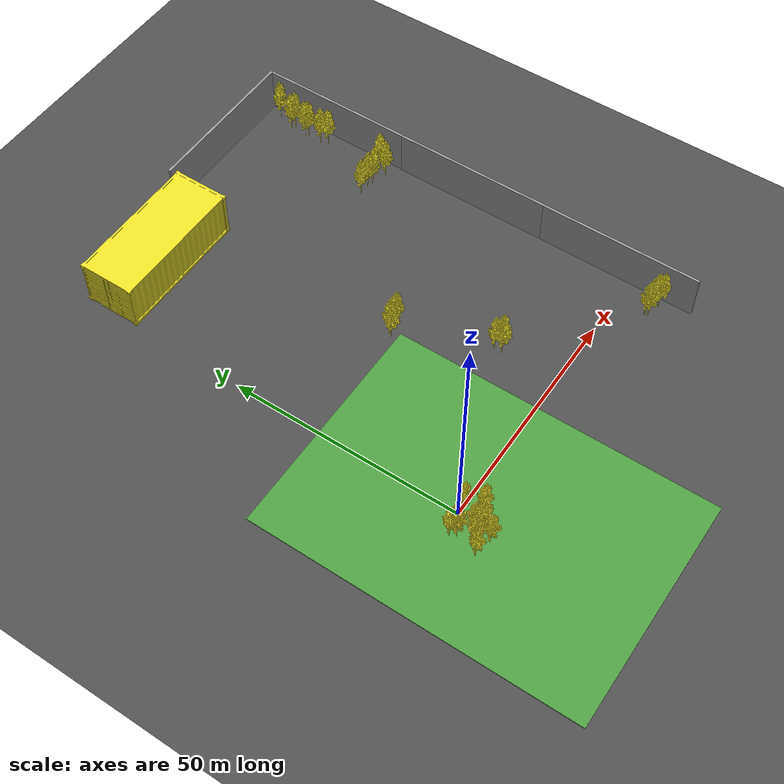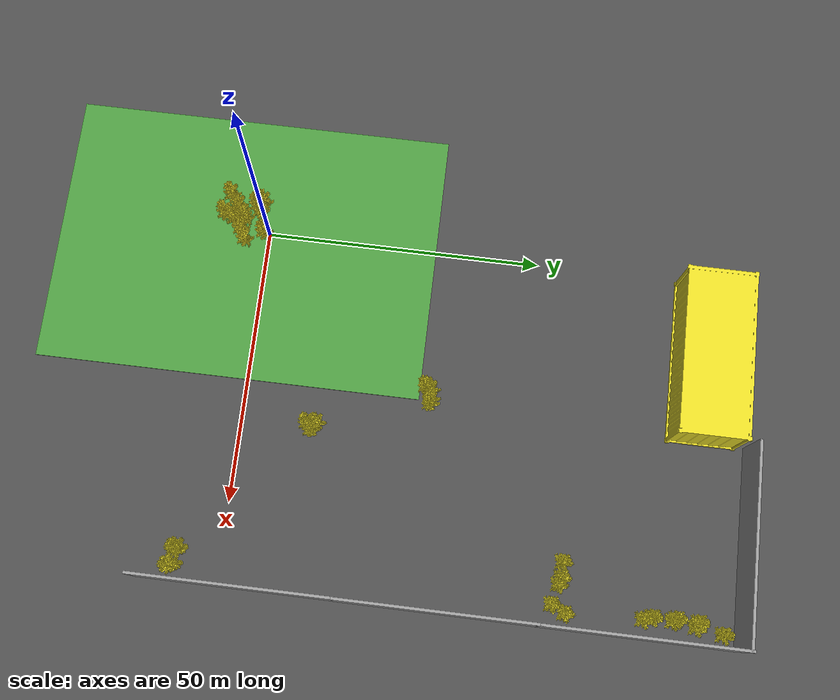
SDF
<sdf version="1.6">
 <world name="default">
  <model name="ground_plane">
   <static>1</static>
   <link name="link">
    <collision name="collision">
     <geometry><plane><normal>0 0 1</normal><size>40000 40000</size></plane></geometry>
     <surface>
      <contact><collide_bitmask>65535</collide_bitmask></contact>
      <friction><ode><mu>100</mu><mu2>50</mu2></ode></friction>
     </surface>
    </collision>
    <visual name="visual">
     <cast_shadows>0</cast_shadows>
     <geometry><plane><normal>0 0 1</normal><size>130 180</size></plane></geometry>
     <material>
      <script><uri>file://media/materials/scripts/gazebo.material</uri><name>Gazebo/Road</name></script>
     </material>
    </visual>
   </link>
  </model>
  <model name="grass_plane">
   <link name="link">
    <inertial>
     <mass>1</mass>
     <inertia><ixx>1</ixx><ixy>0</ixy><ixz>0</ixz><iyy>1</iyy><iyz>0</iyz><izz>1</izz></inertia>
    </inertial>
    <visual name="visual">
     <cast_shadows>0</cast_shadows>
     <geometry><box><size>50 70 0.2</size></box></geometry>
     <material>
      <script><uri>file://media/materials/scripts/gazebo.material</uri><name>Gazebo/Grass</name></script>
     </material>
    </visual>
    <collision name="collision">
     <geometry><box><size>10 30 0.2</size></box></geometry>
     <surface>
      <friction>
       <ode><mu>1</mu><mu2>1</mu2><fdir1>0 0 0</fdir1><slip1>0</slip1><slip2>0</slip2></ode>
       <torsional>
        <coefficient>1</coefficient>
        <patch_radius>0</patch_radius>
        <surface_radius>0</surface_radius>
        <use_patch_radius>1</use_patch_radius>
        <ode><slip>0</slip></ode>
       </torsional>
      </friction>
      <bounce><restitution_coefficient>0</restitution_coefficient><threshold>1e+06</threshold></bounce>
      <contact>
       <collide_without_contact>0</collide_without_contact>
       <collide_without_contact_bitmask>1</collide_without_contact_bitmask>
       <collide_bitmask>1</collide_bitmask>
       <ode>
        <soft_cfm>0</soft_cfm>
        <soft_erp>0.2</soft_erp>
        <kp>1e+13</kp>
        <kd>1</kd>
        <max_vel>0.01</max_vel>
        <min_depth>0</min_depth>
       </ode>
       <bullet>
        <split_impulse>1</split_impulse>
        <split_impulse_penetration_threshold>-0.01</split_impulse_penetration_threshold>
        <soft_cfm>0</soft_cfm>
        <soft_erp>0.2</soft_erp>
        <kp>1e+13</kp>
        <kd>1</kd>
       </bullet>
      </contact>
     </surface>
    </collision>
   </link>
   <static>1</static>
   <pose>2.79773 -3.97523 0 0 -0 0</pose>
  </model>
  <model name="wall1_clone_clone_clone_4">
   <link name="link">
    <enable_wind>1</enable_wind>
    <inertial>
     <mass>1</mass>
     <inertia><ixx>1</ixx><ixy>0</ixy><ixz>0</ixz><iyy>1</iyy><iyz>0</iyz><izz>1</izz></inertia>
    </inertial>
    <visual name="visual">
     <cast_shadows>0</cast_shadows>
     <geometry><box><size>35 0.5 10</size></box></geometry>
     <material>
      <script>
       <uri>model://grey_wall/materials/scripts</uri>
       <uri>model://grey_wall/materials/textures</uri>
       <name>vrc/grey_wall</name>
      </script>
      <shader type="pixel"><normal_map>__default__</normal_map></shader>
      <ambient>1 1 1 1</ambient>
      <diffuse>1 1 1 1</diffuse>
      <specular>0 0 0 1</specular>
      <emissive>0 0 0 1</emissive>
     </material>
    </visual>
    <collision name="collision">
     <geometry><box><size>35 0.5 10</size></box></geometry>
     <surface>
      <friction>
       <ode><mu>1</mu><mu2>1</mu2><fdir1>0 0 0</fdir1><slip1>0</slip1><slip2>0</slip2></ode>
       <torsional>
        <coefficient>1</coefficient>
        <patch_radius>0</patch_radius>
        <surface_radius>0</surface_radius>
        <use_patch_radius>1</use_patch_radius>
        <ode><slip>0</slip></ode>
       </torsional>
      </friction>
      <bounce><restitution_coefficient>0</restitution_coefficient><threshold>1e+06</threshold></bounce>
      <contact>
       <collide_without_contact>0</collide_without_contact>
       <collide_without_contact_bitmask>1</collide_without_contact_bitmask>
       <collide_bitmask>1</collide_bitmask>
       <ode>
        <soft_cfm>0</soft_cfm>
        <soft_erp>0.2</soft_erp>
        <kp>1e+13</kp>
        <kd>1</kd>
        <max_vel>0.01</max_vel>
        <min_depth>0</min_depth>
       </ode>
       <bullet>
        <split_impulse>1</split_impulse>
        <split_impulse_penetration_threshold>-0.01</split_impulse_penetration_threshold>
        <soft_cfm>0</soft_cfm>
        <soft_erp>0.2</soft_erp>
        <kp>1e+13</kp>
        <kd>1</kd>
       </bullet>
      </contact>
     </surface>
    </collision>
   </link>
   <static>1</static>
   <pose>47.1545 89.4112 5 0 -0 0</pose>
  </model>
  <model name="wall1_clone_clone_0_clone_5">
   <link name="link">
    <enable_wind>1</enable_wind>
    <inertial>
     <mass>1</mass>
     <inertia><ixx>1</ixx><ixy>0</ixy><ixz>0</ixz><iyy>1</iyy><iyz>0</iyz><izz>1</izz></inertia>
    </inertial>
    <visual name="visual">
     <cast_shadows>0</cast_shadows>
     <geometry><box><size>35 0.5 10</size></box></geometry>
     <material>
      <script>
       <uri>model://grey_wall/materials/scripts</uri>
       <uri>model://grey_wall/materials/textures</uri>
       <name>vrc/grey_wall</name>
      </script>
      <shader type="pixel"><normal_map>__default__</normal_map></shader>
      <ambient>1 1 1 1</ambient>
      <diffuse>1 1 1 1</diffuse>
      <specular>0 0 0 1</specular>
      <emissive>0 0 0 1</emissive>
     </material>
    </visual>
    <collision name="collision">
     <geometry><box><size>35 0.5 10</size></box></geometry>
     <surface>
      <friction>
       <ode><mu>1</mu><mu2>1</mu2><fdir1>0 0 0</fdir1><slip1>0</slip1><slip2>0</slip2></ode>
       <torsional>
        <coefficient>1</coefficient>
        <patch_radius>0</patch_radius>
        <surface_radius>0</surface_radius>
        <use_patch_radius>1</use_patch_radius>
        <ode><slip>0</slip></ode>
       </torsional>
      </friction>
      <bounce><restitution_coefficient>0</restitution_coefficient><threshold>1e+06</threshold></bounce>
      <contact>
       <collide_without_contact>0</collide_without_contact>
       <collide_without_contact_bitmask>1</collide_without_contact_bitmask>
       <collide_bitmask>1</collide_bitmask>
       <ode>
        <soft_cfm>0</soft_cfm>
        <soft_erp>0.2</soft_erp>
        <kp>1e+13</kp>
        <kd>1</kd>
        <max_vel>0.01</max_vel>
        <min_depth>0</min_depth>
       </ode>
       <bullet>
        <split_impulse>1</split_impulse>
        <split_impulse_penetration_threshold>-0.01</split_impulse_penetration_threshold>
        <soft_cfm>0</soft_cfm>
        <soft_erp>0.2</soft_erp>
        <kp>1e+13</kp>
        <kd>1</kd>
       </bullet>
      </contact>
     </surface>
    </collision>
   </link>
   <static>1</static>
   <pose>64.6101 72.3736 5 0 0 -1.57191</pose>
  </model>
  <model name="tree0_clone_0">
   <link name="tree_base">
    <inertial>
     <mass>50</mass>
     <inertia>
      <ixx>6.71748</ixx>
      <ixy>2.148e-05</ixy>
      <ixz>-2.4e-07</ixz>
      <iyy>6.71748</iyy>
      <iyz>-0.171807</iyz>
      <izz>6.71748</izz>
     </inertia>
    </inertial>
    <collision name="tree_base_fixed_joint_lump__collision_collision">
     <geometry><mesh><scale>0.4 0.4 0.6</scale><uri>model://tree/meshes/tree_25k_mesh.dae</uri></mesh></geometry>
    </collision>
    <visual name="tree_base_visual">
     <geometry><mesh><scale>0.4 0.4 0.6</scale><uri>model://tree/meshes/tree_25k_mesh.dae</uri></mesh></geometry>
     <material>
      <script><name>Gazebo/Yellow</name><uri>file://media/materials/scripts/gazebo.material</uri></script>
     </material>
    </visual>
   </link>
   <joint name="joint_tree_base" type="fixed"><child>tree_base</child><parent>world</parent></joint>
   <static>1</static>
   <pose>-5.36922 -3.35864 0 0 -0 0</pose>
  </model>
  <model name="tree0_clone_clone">
   <link name="tree_base">
    <inertial>
     <mass>50</mass>
     <inertia>
      <ixx>6.71748</ixx>
      <ixy>2.148e-05</ixy>
      <ixz>-2.4e-07</ixz>
      <iyy>6.71748</iyy>
      <iyz>-0.171807</iyz>
      <izz>6.71748</izz>
     </inertia>
    </inertial>
    <collision name="tree_base_fixed_joint_lump__collision_collision">
     <geometry><mesh><scale>0.4 0.4 0.6</scale><uri>model://tree/meshes/tree_25k_mesh.dae</uri></mesh></geometry>
    </collision>
    <visual name="tree_base_visual">
     <geometry><mesh><scale>0.4 0.4 0.6</scale><uri>model://tree/meshes/tree_25k_mesh.dae</uri></mesh></geometry>
     <material>
      <script><name>Gazebo/Yellow</name><uri>file://media/materials/scripts/gazebo.material</uri></script>
     </material>
    </visual>
   </link>
   <joint name="joint_tree_base" type="fixed"><child>tree_base</child><parent>world</parent></joint>
   <static>1</static>
   <pose>-3.93726 1.50002 0 0 -0 0</pose>
  </model>
  <model name="tree0_clone_clone_clone">
   <link name="tree_base">
    <inertial>
     <mass>50</mass>
     <inertia>
      <ixx>6.71748</ixx>
      <ixy>2.148e-05</ixy>
      <ixz>-2.4e-07</ixz>
      <iyy>6.71748</iyy>
      <iyz>-0.171807</iyz>
      <izz>6.71748</izz>
     </inertia>
    </inertial>
    <collision name="tree_base_fixed_joint_lump__collision_collision">
     <geometry><mesh><scale>0.4 0.4 0.6</scale><uri>model://tree/meshes/tree_25k_mesh.dae</uri></mesh></geometry>
    </collision>
    <visual name="tree_base_visual">
     <geometry><mesh><scale>0.4 0.4 0.6</scale><uri>model://tree/meshes/tree_25k_mesh.dae</uri></mesh></geometry>
     <material>
      <script><name>Gazebo/Yellow</name><uri>file://media/materials/scripts/gazebo.material</uri></script>
     </material>
    </visual>
   </link>
   <joint name="joint_tree_base" type="fixed"><child>tree_base</child><parent>world</parent></joint>
   <static>1</static>
   <pose>-1.1612 -0.337894 0 0 -0 0</pose>
  </model>
  <model name="tree0_clone_clone_clone_1">
   <link name="tree_base">
    <inertial>
     <mass>50</mass>
     <inertia>
      <ixx>6.71748</ixx>
      <ixy>2.148e-05</ixy>
      <ixz>-2.4e-07</ixz>
      <iyy>6.71748</iyy>
      <iyz>-0.171807</iyz>
      <izz>6.71748</izz>
     </inertia>
    </inertial>
    <collision name="tree_base_fixed_joint_lump__collision_collision">
     <geometry><mesh><scale>0.4 0.4 0.6</scale><uri>model://tree/meshes/tree_25k_mesh.dae</uri></mesh></geometry>
    </collision>
    <visual name="tree_base_visual">
     <geometry><mesh><scale>0.4 0.4 0.6</scale><uri>model://tree/meshes/tree_25k_mesh.dae</uri></mesh></geometry>
     <material>
      <script><name>Gazebo/Yellow</name><uri>file://media/materials/scripts/gazebo.material</uri></script>
     </material>
    </visual>
   </link>
   <joint name="joint_tree_base" type="fixed"><child>tree_base</child><parent>world</parent></joint>
   <static>1</static>
   <pose>-1.69512 -4.12698 0 0 -0 0</pose>
  </model>
  <model name="tree0_clone_clone_clone_2">
   <link name="tree_base">
    <inertial>
     <mass>50</mass>
     <inertia>
      <ixx>6.71748</ixx>
      <ixy>2.148e-05</ixy>
      <ixz>-2.4e-07</ixz>
      <iyy>6.71748</iyy>
      <iyz>-0.171807</iyz>
      <izz>6.71748</izz>
     </inertia>
    </inertial>
    <collision name="tree_base_fixed_joint_lump__collision_collision">
     <geometry><mesh><scale>0.4 0.4 0.6</scale><uri>model://tree/meshes/tree_25k_mesh.dae</uri></mesh></geometry>
    </collision>
    <visual name="tree_base_visual">
     <geometry><mesh><scale>0.4 0.4 0.6</scale><uri>model://tree/meshes/tree_25k_mesh.dae</uri></mesh></geometry>
     <material>
      <script><name>Gazebo/Yellow</name><uri>file://media/materials/scripts/gazebo.material</uri></script>
     </material>
    </visual>
   </link>
   <joint name="joint_tree_base" type="fixed"><child>tree_base</child><parent>world</parent></joint>
   <static>1</static>
   <pose>2.83552 0.103742 0 0 -0 0</pose>
  </model>
  <model name="tree0_clone_clone_clone_3">
   <link name="tree_base">
    <inertial>
     <mass>50</mass>
     <inertia>
      <ixx>6.71748</ixx>
      <ixy>2.148e-05</ixy>
      <ixz>-2.4e-07</ixz>
      <iyy>6.71748</iyy>
      <iyz>-0.171807</iyz>
      <izz>6.71748</izz>
     </inertia>
    </inertial>
    <collision name="tree_base_fixed_joint_lump__collision_collision">
     <geometry><mesh><scale>0.4 0.4 0.6</scale><uri>model://tree/meshes/tree_25k_mesh.dae</uri></mesh></geometry>
    </collision>
    <visual name="tree_base_visual">
     <geometry><mesh><scale>0.4 0.4 0.6</scale><uri>model://tree/meshes/tree_25k_mesh.dae</uri></mesh></geometry>
     <material>
      <script><name>Gazebo/Yellow</name><uri>file://media/materials/scripts/gazebo.material</uri></script>
     </material>
    </visual>
   </link>
   <joint name="joint_tree_base" type="fixed"><child>tree_base</child><parent>world</parent></joint>
   <static>1</static>
   <pose>1.12875 3.41765 0 0 -0 0</pose>
  </model>
  <model name="container121">
   <link name="container_base">
    <pose>0 0 0.01 0 -0 0</pose>
    <inertial>
     <mass>500</mass>
     <inertia>
      <ixx>6.71748</ixx>
      <ixy>2.148e-05</ixy>
      <ixz>-2.4e-07</ixz>
      <iyy>6.71748</iyy>
      <iyz>-0.171807</iyz>
      <izz>6.71748</izz>
     </inertia>
    </inertial>
    <collision name="container_base_fixed_joint_lump__collision_collision">
     <geometry>
      <mesh><scale>5 5 4</scale><uri>model://container/meshes/container_mesh_1000.dae</uri></mesh>
     </geometry>
    </collision>
    <visual name="container_base_visual">
     <geometry>
      <mesh><scale>5 5 4</scale><uri>model://container/meshes/container_mesh_1000.dae</uri></mesh>
     </geometry>
     <material>
      <script><name>Gazebo/Yellow</name><uri>file://media/materials/scripts/gazebo.material</uri></script>
     </material>
    </visual>
   </link>
   <joint name="joint_container_base" type="fixed"><child>container_base</child><parent>world</parent></joint>
   <static>1</static>
   <pose>0.231223 75.2758 0 0 -0 0</pose>
  </model>
  <model name="wall1_clone_clone_0_clone_5_clone">
   <link name="link">
    <enable_wind>1</enable_wind>
    <inertial>
     <mass>1</mass>
     <inertia><ixx>1</ixx><ixy>0</ixy><ixz>0</ixz><iyy>1</iyy><iyz>0</iyz><izz>1</izz></inertia>
    </inertial>
    <visual name="visual">
     <cast_shadows>0</cast_shadows>
     <geometry><box><size>35 0.5 10</size></box></geometry>
     <material>
      <script>
       <uri>model://grey_wall/materials/scripts</uri>
       <uri>model://grey_wall/materials/textures</uri>
       <name>vrc/grey_wall</name>
      </script>
      <shader type="pixel"><normal_map>__default__</normal_map></shader>
      <ambient>1 1 1 1</ambient>
      <diffuse>1 1 1 1</diffuse>
      <specular>0 0 0 1</specular>
      <emissive>0 0 0 1</emissive>
     </material>
    </visual>
    <collision name="collision">
     <geometry><box><size>35 0.5 10</size></box></geometry>
     <surface>
      <friction>
       <ode><mu>1</mu><mu2>1</mu2><fdir1>0 0 0</fdir1><slip1>0</slip1><slip2>0</slip2></ode>
       <torsional>
        <coefficient>1</coefficient>
        <patch_radius>0</patch_radius>
        <surface_radius>0</surface_radius>
        <use_patch_radius>1</use_patch_radius>
        <ode><slip>0</slip></ode>
       </torsional>
      </friction>
      <bounce><restitution_coefficient>0</restitution_coefficient><threshold>1e+06</threshold></bounce>
      <contact>
       <collide_without_contact>0</collide_without_contact>
       <collide_without_contact_bitmask>1</collide_without_contact_bitmask>
       <collide_bitmask>1</collide_bitmask>
       <ode>
        <soft_cfm>0</soft_cfm>
        <soft_erp>0.2</soft_erp>
        <kp>1e+13</kp>
        <kd>1</kd>
        <max_vel>0.01</max_vel>
        <min_depth>0</min_depth>
       </ode>
       <bullet>
        <split_impulse>1</split_impulse>
        <split_impulse_penetration_threshold>-0.01</split_impulse_penetration_threshold>
        <soft_cfm>0</soft_cfm>
        <soft_erp>0.2</soft_erp>
        <kp>1e+13</kp>
        <kd>1</kd>
       </bullet>
      </contact>
     </surface>
    </collision>
   </link>
   <static>1</static>
   <pose>64.5471 37.9291 5 0 0 -1.57191</pose>
  </model>
  <model name="wall1_clone_clone_0_clone_5_clone_0">
   <link name="link">
    <enable_wind>1</enable_wind>
    <inertial>
     <mass>1</mass>
     <inertia><ixx>1</ixx><ixy>0</ixy><ixz>0</ixz><iyy>1</iyy><iyz>0</iyz><izz>1</izz></inertia>
    </inertial>
    <visual name="visual">
     <cast_shadows>0</cast_shadows>
     <geometry><box><size>35 0.5 10</size></box></geometry>
     <material>
      <script>
       <uri>model://grey_wall/materials/scripts</uri>
       <uri>model://grey_wall/materials/textures</uri>
       <name>vrc/grey_wall</name>
      </script>
      <shader type="pixel"><normal_map>__default__</normal_map></shader>
      <ambient>1 1 1 1</ambient>
      <diffuse>1 1 1 1</diffuse>
      <specular>0 0 0 1</specular>
      <emissive>0 0 0 1</emissive>
     </material>
    </visual>
    <collision name="collision">
     <geometry><box><size>35 0.5 10</size></box></geometry>
     <surface>
      <friction>
       <ode><mu>1</mu><mu2>1</mu2><fdir1>0 0 0</fdir1><slip1>0</slip1><slip2>0</slip2></ode>
       <torsional>
        <coefficient>1</coefficient>
        <patch_radius>0</patch_radius>
        <surface_radius>0</surface_radius>
        <use_patch_radius>1</use_patch_radius>
        <ode><slip>0</slip></ode>
       </torsional>
      </friction>
      <bounce><restitution_coefficient>0</restitution_coefficient><threshold>1e+06</threshold></bounce>
      <contact>
       <collide_without_contact>0</collide_without_contact>
       <collide_without_contact_bitmask>1</collide_without_contact_bitmask>
       <collide_bitmask>1</collide_bitmask>
       <ode>
        <soft_cfm>0</soft_cfm>
        <soft_erp>0.2</soft_erp>
        <kp>1e+13</kp>
        <kd>1</kd>
        <max_vel>0.01</max_vel>
        <min_depth>0</min_depth>
       </ode>
       <bullet>
        <split_impulse>1</split_impulse>
        <split_impulse_penetration_threshold>-0.01</split_impulse_penetration_threshold>
        <soft_cfm>0</soft_cfm>
        <soft_erp>0.2</soft_erp>
        <kp>1e+13</kp>
        <kd>1</kd>
       </bullet>
      </contact>
     </surface>
    </collision>
   </link>
   <static>1</static>
   <pose>64.48 3.53761 5 0 0 -1.57191</pose>
  </model>
  <model name="tree0_clone_clone_clone_1_clone">
   <link name="tree_base">
    <inertial>
     <mass>50</mass>
     <inertia>
      <ixx>6.71748</ixx>
      <ixy>2.148e-05</ixy>
      <ixz>-2.4e-07</ixz>
      <iyy>6.71748</iyy>
      <iyz>-0.171807</iyz>
      <izz>6.71748</izz>
     </inertia>
    </inertial>
    <collision name="tree_base_fixed_joint_lump__collision_collision">
     <geometry><mesh><scale>0.4 0.4 0.6</scale><uri>model://tree/meshes/tree_25k_mesh.dae</uri></mesh></geometry>
    </collision>
    <visual name="tree_base_visual">
     <geometry><mesh><scale>0.4 0.4 0.6</scale><uri>model://tree/meshes/tree_25k_mesh.dae</uri></mesh></geometry>
     <material>
      <script><name>Gazebo/Yellow</name><uri>file://media/materials/scripts/gazebo.material</uri></script>
     </material>
    </visual>
   </link>
   <joint name="joint_tree_base" type="fixed"><child>tree_base</child><parent>world</parent></joint>
   <static>1</static>
   <pose>61.6795 76.3741 0 0 -0 0</pose>
  </model>
  <model name="tree0_clone_clone_clone_1_clone_0">
   <link name="tree_base">
    <inertial>
     <mass>50</mass>
     <inertia>
      <ixx>6.71748</ixx>
      <ixy>2.148e-05</ixy>
      <ixz>-2.4e-07</ixz>
      <iyy>6.71748</iyy>
      <iyz>-0.171807</iyz>
      <izz>6.71748</izz>
     </inertia>
    </inertial>
    <collision name="tree_base_fixed_joint_lump__collision_collision">
     <geometry><mesh><scale>0.4 0.4 0.6</scale><uri>model://tree/meshes/tree_25k_mesh.dae</uri></mesh></geometry>
    </collision>
    <visual name="tree_base_visual">
     <geometry><mesh><scale>0.4 0.4 0.6</scale><uri>model://tree/meshes/tree_25k_mesh.dae</uri></mesh></geometry>
     <material>
      <script><name>Gazebo/Yellow</name><uri>file://media/materials/scripts/gazebo.material</uri></script>
     </material>
    </visual>
   </link>
   <joint name="joint_tree_base" type="fixed"><child>tree_base</child><parent>world</parent></joint>
   <static>1</static>
   <pose>61.0806 85.71 0 0 -0 0</pose>
  </model>
  <model name="tree0_clone_clone_clone_1_clone_1">
   <link name="tree_base">
    <inertial>
     <mass>50</mass>
     <inertia>
      <ixx>6.71748</ixx>
      <ixy>2.148e-05</ixy>
      <ixz>-2.4e-07</ixz>
      <iyy>6.71748</iyy>
      <iyz>-0.171807</iyz>
      <izz>6.71748</izz>
     </inertia>
    </inertial>
    <collision name="tree_base_fixed_joint_lump__collision_collision">
     <geometry><mesh><scale>0.4 0.4 0.6</scale><uri>model://tree/meshes/tree_25k_mesh.dae</uri></mesh></geometry>
    </collision>
    <visual name="tree_base_visual">
     <geometry><mesh><scale>0.4 0.4 0.6</scale><uri>model://tree/meshes/tree_25k_mesh.dae</uri></mesh></geometry>
     <material>
      <script><name>Gazebo/Yellow</name><uri>file://media/materials/scripts/gazebo.material</uri></script>
     </material>
    </visual>
   </link>
   <joint name="joint_tree_base" type="fixed"><child>tree_base</child><parent>world</parent></joint>
   <static>1</static>
   <pose>61.3538 81.3269 0 0 -0 0</pose>
  </model>
  <model name="tree0_clone_clone_clone_1_clone_2">
   <link name="tree_base">
    <inertial>
     <mass>50</mass>
     <inertia>
      <ixx>6.71748</ixx>
      <ixy>2.148e-05</ixy>
      <ixz>-2.4e-07</ixz>
      <iyy>6.71748</iyy>
      <iyz>-0.171807</iyz>
      <izz>6.71748</izz>
     </inertia>
    </inertial>
    <collision name="tree_base_fixed_joint_lump__collision_collision">
     <geometry><mesh><scale>0.4 0.4 0.6</scale><uri>model://tree/meshes/tree_25k_mesh.dae</uri></mesh></geometry>
    </collision>
    <visual name="tree_base_visual">
     <geometry><mesh><scale>0.4 0.4 0.6</scale><uri>model://tree/meshes/tree_25k_mesh.dae</uri></mesh></geometry>
     <material>
      <script><name>Gazebo/Yellow</name><uri>file://media/materials/scripts/gazebo.material</uri></script>
     </material>
    </visual>
   </link>
   <joint name="joint_tree_base" type="fixed"><child>tree_base</child><parent>world</parent></joint>
   <static>1</static>
   <pose>61.0046 61.0021 0 0 -0 0</pose>
  </model>
  <model name="tree0_clone_clone_clone_1_clone_3">
   <link name="tree_base">
    <inertial>
     <mass>50</mass>
     <inertia>
      <ixx>6.71748</ixx>
      <ixy>2.148e-05</ixy>
      <ixz>-2.4e-07</ixz>
      <iyy>6.71748</iyy>
      <iyz>-0.171807</iyz>
      <izz>6.71748</izz>
     </inertia>
    </inertial>
    <collision name="tree_base_fixed_joint_lump__collision_collision">
     <geometry><mesh><scale>0.4 0.4 0.6</scale><uri>model://tree/meshes/tree_25k_mesh.dae</uri></mesh></geometry>
    </collision>
    <visual name="tree_base_visual">
     <geometry><mesh><scale>0.4 0.4 0.6</scale><uri>model://tree/meshes/tree_25k_mesh.dae</uri></mesh></geometry>
     <material>
      <script><name>Gazebo/Yellow</name><uri>file://media/materials/scripts/gazebo.material</uri></script>
     </material>
    </visual>
   </link>
   <joint name="joint_tree_base" type="fixed"><child>tree_base</child><parent>world</parent></joint>
   <static>1</static>
   <pose>57.5773 61.8933 0 0 -0 0</pose>
  </model>
  <model name="tree0_clone_clone_clone_1_clone_4">
   <link name="tree_base">
    <inertial>
     <mass>50</mass>
     <inertia>
      <ixx>6.71748</ixx>
      <ixy>2.148e-05</ixy>
      <ixz>-2.4e-07</ixz>
      <iyy>6.71748</iyy>
      <iyz>-0.171807</iyz>
      <izz>6.71748</izz>
     </inertia>
    </inertial>
    <collision name="tree_base_fixed_joint_lump__collision_collision">
     <geometry><mesh><scale>0.4 0.4 0.6</scale><uri>model://tree/meshes/tree_25k_mesh.dae</uri></mesh></geometry>
    </collision>
    <visual name="tree_base_visual">
     <geometry><mesh><scale>0.4 0.4 0.6</scale><uri>model://tree/meshes/tree_25k_mesh.dae</uri></mesh></geometry>
     <material>
      <script><name>Gazebo/Yellow</name><uri>file://media/materials/scripts/gazebo.material</uri></script>
     </material>
    </visual>
   </link>
   <joint name="joint_tree_base" type="fixed"><child>tree_base</child><parent>world</parent></joint>
   <static>1</static>
   <pose>53.8554 62.3117 0 0 -0 0</pose>
  </model>
  <model name="tree0_clone_clone_clone_1_clone_4_clone_2">
   <link name="tree_base">
    <inertial>
     <mass>50</mass>
     <inertia>
      <ixx>6.71748</ixx>
      <ixy>2.148e-05</ixy>
      <ixz>-2.4e-07</ixz>
      <iyy>6.71748</iyy>
      <iyz>-0.171807</iyz>
      <izz>6.71748</izz>
     </inertia>
    </inertial>
    <collision name="tree_base_fixed_joint_lump__collision_collision">
     <geometry><mesh><scale>0.4 0.4 0.6</scale><uri>model://tree/meshes/tree_25k_mesh.dae</uri></mesh></geometry>
    </collision>
    <visual name="tree_base_visual">
     <geometry><mesh><scale>0.4 0.4 0.6</scale><uri>model://tree/meshes/tree_25k_mesh.dae</uri></mesh></geometry>
     <material>
      <script><name>Gazebo/Yellow</name><uri>file://media/materials/scripts/gazebo.material</uri></script>
     </material>
    </visual>
   </link>
   <joint name="joint_tree_base" type="fixed"><child>tree_base</child><parent>world</parent></joint>
   <static>1</static>
   <pose>58.9183 -2.67417 0 0 -0 0</pose>
  </model>
  <model name="tree0_clone_clone_clone_1_clone_4_clone_3">
   <link name="tree_base">
    <inertial>
     <mass>50</mass>
     <inertia>
      <ixx>6.71748</ixx>
      <ixy>2.148e-05</ixy>
      <ixz>-2.4e-07</ixz>
      <iyy>6.71748</iyy>
      <iyz>-0.171807</iyz>
      <izz>6.71748</izz>
     </inertia>
    </inertial>
    <collision name="tree_base_fixed_joint_lump__collision_collision">
     <geometry><mesh><scale>0.4 0.4 0.6</scale><uri>model://tree/meshes/tree_25k_mesh.dae</uri></mesh></geometry>
    </collision>
    <visual name="tree_base_visual">
     <geometry><mesh><scale>0.4 0.4 0.6</scale><uri>model://tree/meshes/tree_25k_mesh.dae</uri></mesh></geometry>
     <material>
      <script><name>Gazebo/Yellow</name><uri>file://media/materials/scripts/gazebo.material</uri></script>
     </material>
    </visual>
   </link>
   <joint name="joint_tree_base" type="fixed"><child>tree_base</child><parent>world</parent></joint>
   <static>1</static>
   <pose>36.314 16.8724 0 0 -0 0</pose>
  </model>
  <model name="tree0_clone_clone_clone_1_clone_4_clone_4">
   <link name="tree_base">
    <inertial>
     <mass>50</mass>
     <inertia>
      <ixx>6.71748</ixx>
      <ixy>2.148e-05</ixy>
      <ixz>-2.4e-07</ixz>
      <iyy>6.71748</iyy>
      <iyz>-0.171807</iyz>
      <izz>6.71748</izz>
     </inertia>
    </inertial>
    <collision name="tree_base_fixed_joint_lump__collision_collision">
     <geometry><mesh><scale>0.4 0.4 0.6</scale><uri>model://tree/meshes/tree_25k_mesh.dae</uri></mesh></geometry>
    </collision>
    <visual name="tree_base_visual">
     <geometry><mesh><scale>0.4 0.4 0.6</scale><uri>model://tree/meshes/tree_25k_mesh.dae</uri></mesh></geometry>
     <material>
      <script><name>Gazebo/Yellow</name><uri>file://media/materials/scripts/gazebo.material</uri></script>
     </material>
    </visual>
   </link>
   <joint name="joint_tree_base" type="fixed"><child>tree_base</child><parent>world</parent></joint>
   <static>1</static>
   <pose>29.2571 36.919 0 0 -0 0</pose>
  </model>
  <model name="tree0_clone_7">
   <link name="tree_base">
    <inertial>
     <mass>50</mass>
     <inertia>
      <ixx>6.71748</ixx>
      <ixy>2.148e-05</ixy>
      <ixz>-2.4e-07</ixz>
      <iyy>6.71748</iyy>
      <iyz>-0.171807</iyz>
      <izz>6.71748</izz>
     </inertia>
    </inertial>
    <collision name="tree_base_fixed_joint_lump__collision_collision">
     <geometry><mesh><scale>0.4 0.4 0.6</scale><uri>model://tree/meshes/tree_25k_mesh.dae</uri></mesh></geometry>
    </collision>
    <visual name="tree_base_visual">
     <geometry><mesh><scale>0.4 0.4 0.6</scale><uri>model://tree/meshes/tree_25k_mesh.dae</uri></mesh></geometry>
     <material>
      <script><name>Gazebo/Yellow</name><uri>file://media/materials/scripts/gazebo.material</uri></script>
     </material>
    </visual>
   </link>
   <joint name="joint_tree_base" type="fixed"><child>tree_base</child><parent>world</parent></joint>
   <static>1</static>
   <pose>-3.30226 -1.7556 0 0 -0 0</pose>
  </model>
  <model name="tree0_clone_12">
   <link name="tree_base">
    <inertial>
     <mass>50</mass>
     <inertia>
      <ixx>6.71748</ixx>
      <ixy>2.148e-05</ixy>
      <ixz>-2.4e-07</ixz>
      <iyy>6.71748</iyy>
      <iyz>-0.171807</iyz>
      <izz>6.71748</izz>
     </inertia>
    </inertial>
    <collision name="tree_base_fixed_joint_lump__collision_collision">
     <geometry><mesh><scale>0.4 0.4 0.6</scale><uri>model://tree/meshes/tree_25k_mesh.dae</uri></mesh></geometry>
    </collision>
    <visual name="tree_base_visual">
     <geometry><mesh><scale>0.4 0.4 0.6</scale><uri>model://tree/meshes/tree_25k_mesh.dae</uri></mesh></geometry>
     <material>
      <script><name>Gazebo/Yellow</name><uri>file://media/materials/scripts/gazebo.material</uri></script>
     </material>
    </visual>
   </link>
   <joint name="joint_tree_base" type="fixed"><child>tree_base</child><parent>world</parent></joint>
   <static>1</static>
   <pose>-4.54625 2.65957 0 0 -0 0</pose>
  </model>
  <model name="tree0_clone_16">
   <link name="tree_base">
    <inertial>
     <mass>50</mass>
     <inertia>
      <ixx>6.71748</ixx>
      <ixy>2.148e-05</ixy>
      <ixz>-2.4e-07</ixz>
      <iyy>6.71748</iyy>
      <iyz>-0.171807</iyz>
      <izz>6.71748</izz>
     </inertia>
    </inertial>
    <collision name="tree_base_fixed_joint_lump__collision_collision">
     <geometry><mesh><scale>0.4 0.4 0.6</scale><uri>model://tree/meshes/tree_25k_mesh.dae</uri></mesh></geometry>
    </collision>
    <visual name="tree_base_visual">
     <geometry><mesh><scale>0.4 0.4 0.6</scale><uri>model://tree/meshes/tree_25k_mesh.dae</uri></mesh></geometry>
     <material>
      <script><name>Gazebo/Yellow</name><uri>file://media/materials/scripts/gazebo.material</uri></script>
     </material>
    </visual>
   </link>
   <joint name="joint_tree_base" type="fixed"><child>tree_base</child><parent>world</parent></joint>
   <static>1</static>
   <pose>-1.87061 -0.973241 0 0 -0 0</pose>
  </model>
  <model name="tree0_clone_17">
   <link name="tree_base">
    <inertial>
     <mass>50</mass>
     <inertia>
      <ixx>6.71748</ixx>
      <ixy>2.148e-05</ixy>
      <ixz>-2.4e-07</ixz>
      <iyy>6.71748</iyy>
      <iyz>-0.171807</iyz>
      <izz>6.71748</izz>
     </inertia>
    </inertial>
    <collision name="tree_base_fixed_joint_lump__collision_collision">
     <geometry><mesh><scale>0.4 0.4 0.6</scale><uri>model://tree/meshes/tree_25k_mesh.dae</uri></mesh></geometry>
    </collision>
    <visual name="tree_base_visual">
     <geometry><mesh><scale>0.4 0.4 0.6</scale><uri>model://tree/meshes/tree_25k_mesh.dae</uri></mesh></geometry>
     <material>
      <script><name>Gazebo/Yellow</name><uri>file://media/materials/scripts/gazebo.material</uri></script>
     </material>
    </visual>
   </link>
   <joint name="joint_tree_base" type="fixed"><child>tree_base</child><parent>world</parent></joint>
   <static>1</static>
   <pose>-0.751547 -2.27246 0 0 -0 0</pose>
  </model>
  <model name="tree0_clone_18">
   <link name="tree_base">
    <inertial>
     <mass>50</mass>
     <inertia>
      <ixx>6.71748</ixx>
      <ixy>2.148e-05</ixy>
      <ixz>-2.4e-07</ixz>
      <iyy>6.71748</iyy>
      <iyz>-0.171807</iyz>
      <izz>6.71748</izz>
     </inertia>
    </inertial>
    <collision name="tree_base_fixed_joint_lump__collision_collision">
     <geometry><mesh><scale>0.4 0.4 0.6</scale><uri>model://tree/meshes/tree_25k_mesh.dae</uri></mesh></geometry>
    </collision>
    <visual name="tree_base_visual">
     <geometry><mesh><scale>0.4 0.4 0.6</scale><uri>model://tree/meshes/tree_25k_mesh.dae</uri></mesh></geometry>
     <material>
      <script><name>Gazebo/Yellow</name><uri>file://media/materials/scripts/gazebo.material</uri></script>
     </material>
    </visual>
   </link>
   <joint name="joint_tree_base" type="fixed"><child>tree_base</child><parent>world</parent></joint>
   <static>1</static>
   <pose>0.96445 -0.896527 0 0 -0 0</pose>
  </model>
  <model name="tree0_clone_19">
   <link name="tree_base">
    <inertial>
     <mass>50</mass>
     <inertia>
      <ixx>6.71748</ixx>
      <ixy>2.148e-05</ixy>
      <ixz>-2.4e-07</ixz>
      <iyy>6.71748</iyy>
      <iyz>-0.171807</iyz>
      <izz>6.71748</izz>
     </inertia>
    </inertial>
    <collision name="tree_base_fixed_joint_lump__collision_collision">
     <geometry><mesh><scale>0.4 0.4 0.6</scale><uri>model://tree/meshes/tree_25k_mesh.dae</uri></mesh></geometry>
    </collision>
    <visual name="tree_base_visual">
     <geometry><mesh><scale>0.4 0.4 0.6</scale><uri>model://tree/meshes/tree_25k_mesh.dae</uri></mesh></geometry>
     <material>
      <script><name>Gazebo/Yellow</name><uri>file://media/materials/scripts/gazebo.material</uri></script>
     </material>
    </visual>
   </link>
   <joint name="joint_tree_base" type="fixed"><child>tree_base</child><parent>world</parent></joint>
   <static>1</static>
   <pose>-2.75324 2.20023 0 0 -0 0</pose>
  </model>
  <model name="tree0_clone_clone_clone_1_clone_4_clone_3_clone">
   <link name="tree_base">
    <inertial>
     <mass>50</mass>
     <inertia>
      <ixx>6.71748</ixx>
      <ixy>2.148e-05</ixy>
      <ixz>-2.4e-07</ixz>
      <iyy>6.71748</iyy>
      <iyz>-0.171807</iyz>
      <izz>6.71748</izz>
     </inertia>
    </inertial>
    <collision name="tree_base_fixed_joint_lump__collision_collision">
     <geometry><mesh><scale>0.4 0.4 0.6</scale><uri>model://tree/meshes/tree_25k_mesh.dae</uri></mesh></geometry>
    </collision>
    <visual name="tree_base_visual">
     <geometry><mesh><scale>0.4 0.4 0.6</scale><uri>model://tree/meshes/tree_25k_mesh.dae</uri></mesh></geometry>
     <material>
      <script><name>Gazebo/Yellow</name><uri>file://media/materials/scripts/gazebo.material</uri></script>
     </material>
    </visual>
   </link>
   <joint name="joint_tree_base" type="fixed"><child>tree_base</child><parent>world</parent></joint>
   <static>1</static>
   <pose>35.0095 17.7314 0 0 -0 0</pose>
  </model>
  <model name="tree0_clone_clone_clone_1_clone_4_clone_3_clone_0">
   <link name="tree_base">
    <inertial>
     <mass>50</mass>
     <inertia>
      <ixx>6.71748</ixx>
      <ixy>2.148e-05</ixy>
      <ixz>-2.4e-07</ixz>
      <iyy>6.71748</iyy>
      <iyz>-0.171807</iyz>
      <izz>6.71748</izz>
     </inertia>
    </inertial>
    <collision name="tree_base_fixed_joint_lump__collision_collision">
     <geometry><mesh><scale>0.4 0.4 0.6</scale><uri>model://tree/meshes/tree_25k_mesh.dae</uri></mesh></geometry>
    </collision>
    <visual name="tree_base_visual">
     <geometry><mesh><scale>0.4 0.4 0.6</scale><uri>model://tree/meshes/tree_25k_mesh.dae</uri></mesh></geometry>
     <material>
      <script><name>Gazebo/Yellow</name><uri>file://media/materials/scripts/gazebo.material</uri></script>
     </material>
    </visual>
   </link>
   <joint name="joint_tree_base" type="fixed"><child>tree_base</child><parent>world</parent></joint>
   <static>1</static>
   <pose>35.1617 16.0304 0 0 -0 0</pose>
  </model>
  <model name="tree0_clone_clone_clone_1_clone_4_clone_3_clone_1">
   <link name="tree_base">
    <inertial>
     <mass>50</mass>
     <inertia>
      <ixx>6.71748</ixx>
      <ixy>2.148e-05</ixy>
      <ixz>-2.4e-07</ixz>
      <iyy>6.71748</iyy>
      <iyz>-0.171807</iyz>
      <izz>6.71748</izz>
     </inertia>
    </inertial>
    <collision name="tree_base_fixed_joint_lump__collision_collision">
     <geometry><mesh><scale>0.4 0.4 0.6</scale><uri>model://tree/meshes/tree_25k_mesh.dae</uri></mesh></geometry>
    </collision>
    <visual name="tree_base_visual">
     <geometry><mesh><scale>0.4 0.4 0.6</scale><uri>model://tree/meshes/tree_25k_mesh.dae</uri></mesh></geometry>
     <material>
      <script><name>Gazebo/Yellow</name><uri>file://media/materials/scripts/gazebo.material</uri></script>
     </material>
    </visual>
   </link>
   <joint name="joint_tree_base" type="fixed"><child>tree_base</child><parent>world</parent></joint>
   <static>1</static>
   <pose>28.3903 37.0069 0 0 -0 0</pose>
  </model>
  <model name="tree0_clone_clone_clone_1_clone_4_clone_3_clone_2">
   <link name="tree_base">
    <inertial>
     <mass>50</mass>
     <inertia>
      <ixx>6.71748</ixx>
      <ixy>2.148e-05</ixy>
      <ixz>-2.4e-07</ixz>
      <iyy>6.71748</iyy>
      <iyz>-0.171807</iyz>
      <izz>6.71748</izz>
     </inertia>
    </inertial>
    <collision name="tree_base_fixed_joint_lump__collision_collision">
     <geometry><mesh><scale>0.4 0.4 0.6</scale><uri>model://tree/meshes/tree_25k_mesh.dae</uri></mesh></geometry>
    </collision>
    <visual name="tree_base_visual">
     <geometry><mesh><scale>0.4 0.4 0.6</scale><uri>model://tree/meshes/tree_25k_mesh.dae</uri></mesh></geometry>
     <material>
      <script><name>Gazebo/Yellow</name><uri>file://media/materials/scripts/gazebo.material</uri></script>
     </material>
    </visual>
   </link>
   <joint name="joint_tree_base" type="fixed"><child>tree_base</child><parent>world</parent></joint>
   <static>1</static>
   <pose>26.772 36.8202 0 0 -0 0</pose>
  </model>
  <model name="tree0_clone_clone_clone_1_clone_4_clone_3_clone_3">
   <link name="tree_base">
    <inertial>
     <mass>50</mass>
     <inertia>
      <ixx>6.71748</ixx>
      <ixy>2.148e-05</ixy>
      <ixz>-2.4e-07</ixz>
      <iyy>6.71748</iyy>
      <iyz>-0.171807</iyz>
      <izz>6.71748</izz>
     </inertia>
    </inertial>
    <collision name="tree_base_fixed_joint_lump__collision_collision">
     <geometry><mesh><scale>0.4 0.4 0.6</scale><uri>model://tree/meshes/tree_25k_mesh.dae</uri></mesh></geometry>
    </collision>
    <visual name="tree_base_visual">
     <geometry><mesh><scale>0.4 0.4 0.6</scale><uri>model://tree/meshes/tree_25k_mesh.dae</uri></mesh></geometry>
     <material>
      <script><name>Gazebo/Yellow</name><uri>file://media/materials/scripts/gazebo.material</uri></script>
     </material>
    </visual>
   </link>
   <joint name="joint_tree_base" type="fixed"><child>tree_base</child><parent>world</parent></joint>
   <static>1</static>
   <pose>26.2164 35.9188 0 0 -0 0</pose>
  </model>
  <model name="tree0_clone_clone_clone_1_clone_4_clone_3_clone_5">
   <link name="tree_base">
    <inertial>
     <mass>50</mass>
     <inertia>
      <ixx>6.71748</ixx>
      <ixy>2.148e-05</ixy>
      <ixz>-2.4e-07</ixz>
      <iyy>6.71748</iyy>
      <iyz>-0.171807</iyz>
      <izz>6.71748</izz>
     </inertia>
    </inertial>
    <collision name="tree_base_fixed_joint_lump__collision_collision">
     <geometry><mesh><scale>0.4 0.4 0.6</scale><uri>model://tree/meshes/tree_25k_mesh.dae</uri></mesh></geometry>
    </collision>
    <visual name="tree_base_visual">
     <geometry><mesh><scale>0.4 0.4 0.6</scale><uri>model://tree/meshes/tree_25k_mesh.dae</uri></mesh></geometry>
     <material>
      <script><name>Gazebo/Yellow</name><uri>file://media/materials/scripts/gazebo.material</uri></script>
     </material>
    </visual>
   </link>
   <joint name="joint_tree_base" type="fixed"><child>tree_base</child><parent>world</parent></joint>
   <static>1</static>
   <pose>59.1115 -2.58965 0 0 -0 0</pose>
  </model>
  <model name="tree0_clone_clone_clone_1_clone_4_clone_3_clone_6">
   <link name="tree_base">
    <inertial>
     <mass>50</mass>
     <inertia>
      <ixx>6.71748</ixx>
      <ixy>2.148e-05</ixy>
      <ixz>-2.4e-07</ixz>
      <iyy>6.71748</iyy>
      <iyz>-0.171807</iyz>
      <izz>6.71748</izz>
     </inertia>
    </inertial>
    <collision name="tree_base_fixed_joint_lump__collision_collision">
     <geometry><mesh><scale>0.4 0.4 0.6</scale><uri>model://tree/meshes/tree_25k_mesh.dae</uri></mesh></geometry>
    </collision>
    <visual name="tree_base_visual">
     <geometry><mesh><scale>0.4 0.4 0.6</scale><uri>model://tree/meshes/tree_25k_mesh.dae</uri></mesh></geometry>
     <material>
      <script><name>Gazebo/Yellow</name><uri>file://media/materials/scripts/gazebo.material</uri></script>
     </material>
    </visual>
   </link>
   <joint name="joint_tree_base" type="fixed"><child>tree_base</child><parent>world</parent></joint>
   <static>1</static>
   <pose>59.2484 -3.23688 0 0 -0 0</pose>
  </model>
  <model name="tree0_clone_clone_clone_1_clone_4_clone_3_clone_7">
   <link name="tree_base">
    <inertial>
     <mass>50</mass>
     <inertia>
      <ixx>6.71748</ixx>
      <ixy>2.148e-05</ixy>
      <ixz>-2.4e-07</ixz>
      <iyy>6.71748</iyy>
      <iyz>-0.171807</iyz>
      <izz>6.71748</izz>
     </inertia>
    </inertial>
    <collision name="tree_base_fixed_joint_lump__collision_collision">
     <geometry><mesh><scale>0.4 0.4 0.6</scale><uri>model://tree/meshes/tree_25k_mesh.dae</uri></mesh></geometry>
    </collision>
    <visual name="tree_base_visual">
     <geometry><mesh><scale>0.4 0.4 0.6</scale><uri>model://tree/meshes/tree_25k_mesh.dae</uri></mesh></geometry>
     <material>
      <script><name>Gazebo/Yellow</name><uri>file://media/materials/scripts/gazebo.material</uri></script>
     </material>
    </visual>
   </link>
   <joint name="joint_tree_base" type="fixed"><child>tree_base</child><parent>world</parent></joint>
   <static>1</static>
   <pose>61.7704 -3.03917 0 0 -0 0</pose>
  </model>
  <model name="tree0_clone_clone_clone_1_clone_4_clone_3_clone_8">
   <link name="tree_base">
    <inertial>
     <mass>50</mass>
     <inertia>
      <ixx>6.71748</ixx>
      <ixy>2.148e-05</ixy>
      <ixz>-2.4e-07</ixz>
      <iyy>6.71748</iyy>
      <iyz>-0.171807</iyz>
      <izz>6.71748</izz>
     </inertia>
    </inertial>
    <collision name="tree_base_fixed_joint_lump__collision_collision">
     <geometry><mesh><scale>0.4 0.4 0.6</scale><uri>model://tree/meshes/tree_25k_mesh.dae</uri></mesh></geometry>
    </collision>
    <visual name="tree_base_visual">
     <geometry><mesh><scale>0.4 0.4 0.6</scale><uri>model://tree/meshes/tree_25k_mesh.dae</uri></mesh></geometry>
     <material>
      <script><name>Gazebo/Yellow</name><uri>file://media/materials/scripts/gazebo.material</uri></script>
     </material>
    </visual>
   </link>
   <joint name="joint_tree_base" type="fixed"><child>tree_base</child><parent>world</parent></joint>
   <static>1</static>
   <pose>62.3013 -3.91686 0 0 -0 0</pose>
  </model>
  <model name="tree0_clone_clone_clone_23_clone_19">
   <link name="tree_base">
    <inertial>
     <mass>50</mass>
     <inertia>
      <ixx>6.71748</ixx>
      <ixy>2.148e-05</ixy>
      <ixz>-2.4e-07</ixz>
      <iyy>6.71748</iyy>
      <iyz>-0.171807</iyz>
      <izz>6.71748</izz>
     </inertia>
    </inertial>
    <collision name="tree_base_fixed_joint_lump__collision_collision">
     <geometry><mesh><scale>0.4 0.4 0.6</scale><uri>model://tree/meshes/tree_25k_mesh.dae</uri></mesh></geometry>
    </collision>
    <visual name="tree_base_visual">
     <geometry><mesh><scale>0.4 0.4 0.6</scale><uri>model://tree/meshes/tree_25k_mesh.dae</uri></mesh></geometry>
     <material>
      <script><name>Gazebo/Yellow</name><uri>file://media/materials/scripts/gazebo.material</uri></script>
     </material>
    </visual>
   </link>
   <joint name="joint_tree_base" type="fixed"><child>tree_base</child><parent>world</parent></joint>
   <static>1</static>
   <pose>56.4192 62.2777 0 0 -0 0</pose>
  </model>
  <model name="tree0_clone_clone_clone_23_clone_20">
   <link name="tree_base">
    <inertial>
     <mass>50</mass>
     <inertia>
      <ixx>6.71748</ixx>
      <ixy>2.148e-05</ixy>
      <ixz>-2.4e-07</ixz>
      <iyy>6.71748</iyy>
      <iyz>-0.171807</iyz>
      <izz>6.71748</izz>
     </inertia>
    </inertial>
    <collision name="tree_base_fixed_joint_lump__collision_collision">
     <geometry><mesh><scale>0.4 0.4 0.6</scale><uri>model://tree/meshes/tree_25k_mesh.dae</uri></mesh></geometry>
    </collision>
    <visual name="tree_base_visual">
     <geometry><mesh><scale>0.4 0.4 0.6</scale><uri>model://tree/meshes/tree_25k_mesh.dae</uri></mesh></geometry>
     <material>
      <script><name>Gazebo/Yellow</name><uri>file://media/materials/scripts/gazebo.material</uri></script>
     </material>
    </visual>
   </link>
   <joint name="joint_tree_base" type="fixed"><child>tree_base</child><parent>world</parent></joint>
   <static>1</static>
   <pose>62.2476 63.2834 0 0 -0 0</pose>
  </model>
  <model name="tree0_clone_clone_clone_23_clone_21">
   <link name="tree_base">
    <inertial>
     <mass>50</mass>
     <inertia>
      <ixx>6.71748</ixx>
      <ixy>2.148e-05</ixy>
      <ixz>-2.4e-07</ixz>
      <iyy>6.71748</iyy>
      <iyz>-0.171807</iyz>
      <izz>6.71748</izz>
     </inertia>
    </inertial>
    <collision name="tree_base_fixed_joint_lump__collision_collision">
     <geometry><mesh><scale>0.4 0.4 0.6</scale><uri>model://tree/meshes/tree_25k_mesh.dae</uri></mesh></geometry>
    </collision>
    <visual name="tree_base_visual">
     <geometry><mesh><scale>0.4 0.4 0.6</scale><uri>model://tree/meshes/tree_25k_mesh.dae</uri></mesh></geometry>
     <material>
      <script><name>Gazebo/Yellow</name><uri>file://media/materials/scripts/gazebo.material</uri></script>
     </material>
    </visual>
   </link>
   <joint name="joint_tree_base" type="fixed"><child>tree_base</child><parent>world</parent></joint>
   <static>1</static>
   <pose>61.1147 77.9659 0 0 -0 0</pose>
  </model>
  <model name="tree0_clone_clone_clone_23_clone_22">
   <link name="tree_base">
    <inertial>
     <mass>50</mass>
     <inertia>
      <ixx>6.71748</ixx>
      <ixy>2.148e-05</ixy>
      <ixz>-2.4e-07</ixz>
      <iyy>6.71748</iyy>
      <iyz>-0.171807</iyz>
      <izz>6.71748</izz>
     </inertia>
    </inertial>
    <collision name="tree_base_fixed_joint_lump__collision_collision">
     <geometry><mesh><scale>0.4 0.4 0.6</scale><uri>model://tree/meshes/tree_25k_mesh.dae</uri></mesh></geometry>
    </collision>
    <visual name="tree_base_visual">
     <geometry><mesh><scale>0.4 0.4 0.6</scale><uri>model://tree/meshes/tree_25k_mesh.dae</uri></mesh></geometry>
     <material>
      <script><name>Gazebo/Yellow</name><uri>file://media/materials/scripts/gazebo.material</uri></script>
     </material>
    </visual>
   </link>
   <joint name="joint_tree_base" type="fixed"><child>tree_base</child><parent>world</parent></joint>
   <static>1</static>
   <pose>60.9172 81.9769 0 0 -0 0</pose>
  </model>
  <model name="tree0_clone_clone_clone_23_clone_23">
   <link name="tree_base">
    <inertial>
     <mass>50</mass>
     <inertia>
      <ixx>6.71748</ixx>
      <ixy>2.148e-05</ixy>
      <ixz>-2.4e-07</ixz>
      <iyy>6.71748</iyy>
      <iyz>-0.171807</iyz>
      <izz>6.71748</izz>
     </inertia>
    </inertial>
    <collision name="tree_base_fixed_joint_lump__collision_collision">
     <geometry><mesh><scale>0.4 0.4 0.6</scale><uri>model://tree/meshes/tree_25k_mesh.dae</uri></mesh></geometry>
    </collision>
    <visual name="tree_base_visual">
     <geometry><mesh><scale>0.4 0.4 0.6</scale><uri>model://tree/meshes/tree_25k_mesh.dae</uri></mesh></geometry>
     <material>
      <script><name>Gazebo/Yellow</name><uri>file://media/materials/scripts/gazebo.material</uri></script>
     </material>
    </visual>
   </link>
   <joint name="joint_tree_base" type="fixed"><child>tree_base</child><parent>world</parent></joint>
   <static>1</static>
   <pose>62.6344 89.8001 0 0 -0 0</pose>
  </model>
  <model name="tree0_clone_clone_clone_23_clone_24">
   <link name="tree_base">
    <inertial>
     <mass>50</mass>
     <inertia>
      <ixx>6.71748</ixx>
      <ixy>2.148e-05</ixy>
      <ixz>-2.4e-07</ixz>
      <iyy>6.71748</iyy>
      <iyz>-0.171807</iyz>
      <izz>6.71748</izz>
     </inertia>
    </inertial>
    <collision name="tree_base_fixed_joint_lump__collision_collision">
     <geometry><mesh><scale>0.4 0.4 0.6</scale><uri>model://tree/meshes/tree_25k_mesh.dae</uri></mesh></geometry>
    </collision>
    <visual name="tree_base_visual">
     <geometry><mesh><scale>0.4 0.4 0.6</scale><uri>model://tree/meshes/tree_25k_mesh.dae</uri></mesh></geometry>
     <material>
      <script><name>Gazebo/Yellow</name><uri>file://media/materials/scripts/gazebo.material</uri></script>
     </material>
    </visual>
   </link>
   <joint name="joint_tree_base" type="fixed"><child>tree_base</child><parent>world</parent></joint>
   <static>1</static>
   <pose>61.893 85.2693 0 0 -0 0</pose>
  </model>
 </world>
</sdf>
